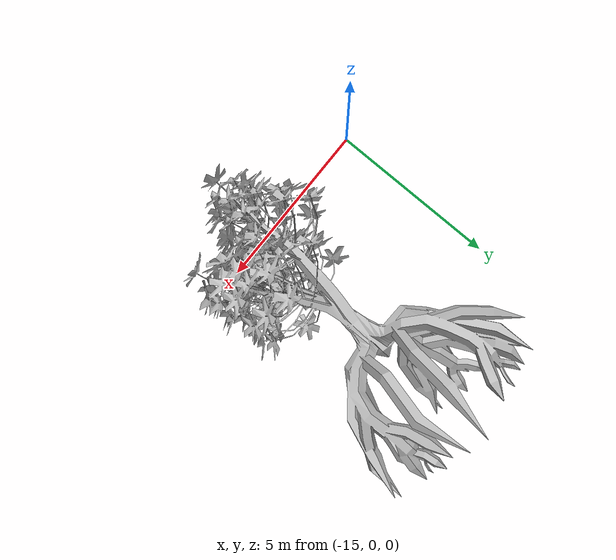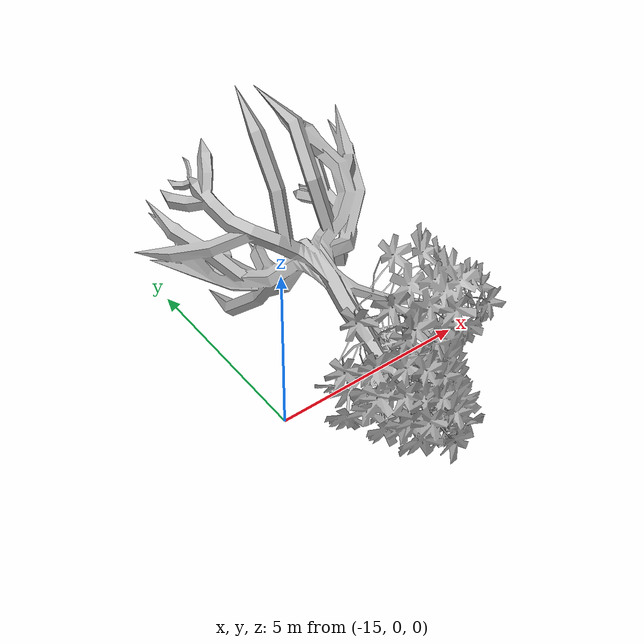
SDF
<?xml version="1.0" ?>
<sdf version="1.10">
  <model name="mangrove_09_11m">
    <pose>0 0 0 0 0 0</pose>
    <static>true</static>
    <link name="visual_only_link">
      <!-- Terrain at (14, 7) is approximately 0.03 m above world zero. -->
      <pose>-10.830 7.068 -0.20 1.5708 0 0</pose>
      <visual name="imported_mangrove_visual"><geometry><mesh><uri>model://mangrove_imported/meshes/Mangrovetree.glb</uri><scale>3.8 3.8 3.8</scale></mesh></geometry></visual>
    </link>
    <!-- The converted GLB mesh is the authoritative visual and collision geometry. -->
    <!-- A mesh collision is used so Gazebo physics and LiDAR can detect the tree shape. -->
    <link name="glb_collision_link">
      <pose>0 0 0.700 0 0 0</pose>
      <collision name="glb_mesh_collision">
        <geometry><cylinder><radius>1.0</radius><length>4.2</length></cylinder></geometry>
      </collision>
    </link>
  </model>
</sdf>
